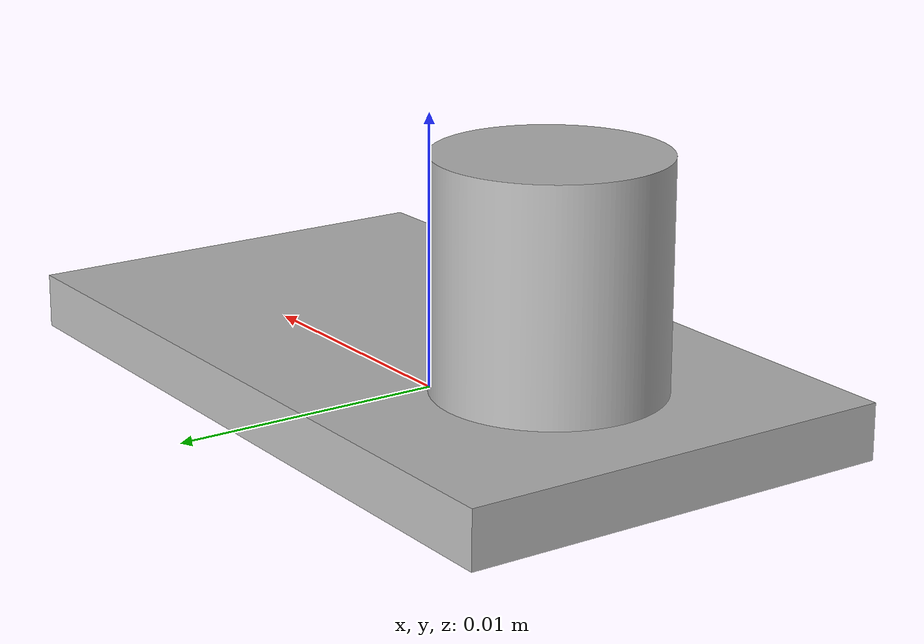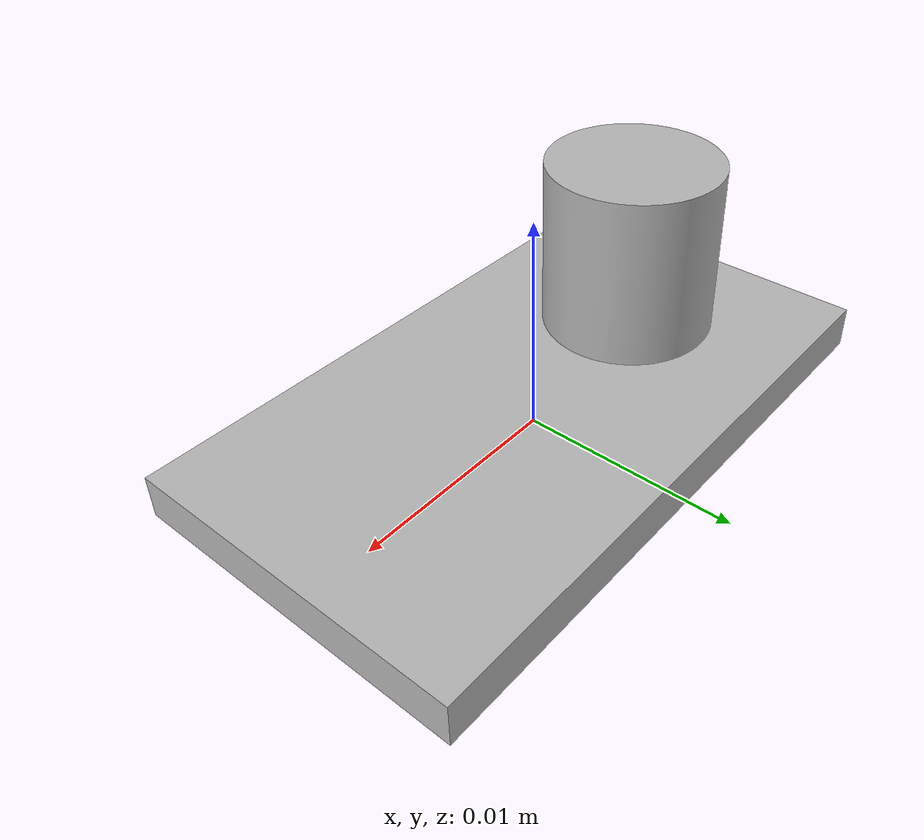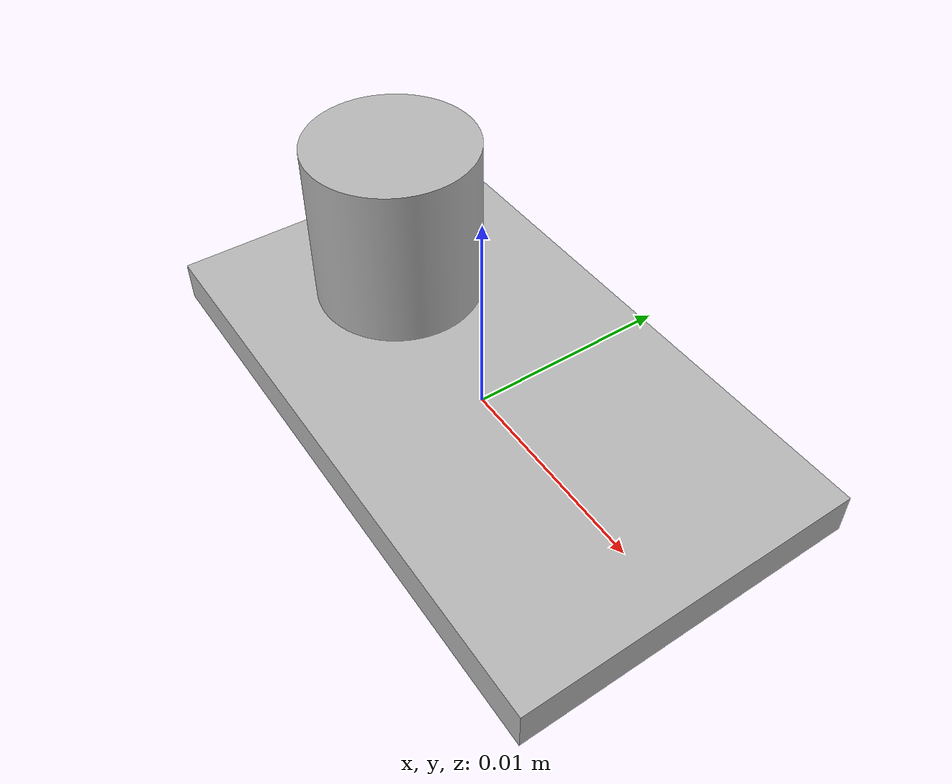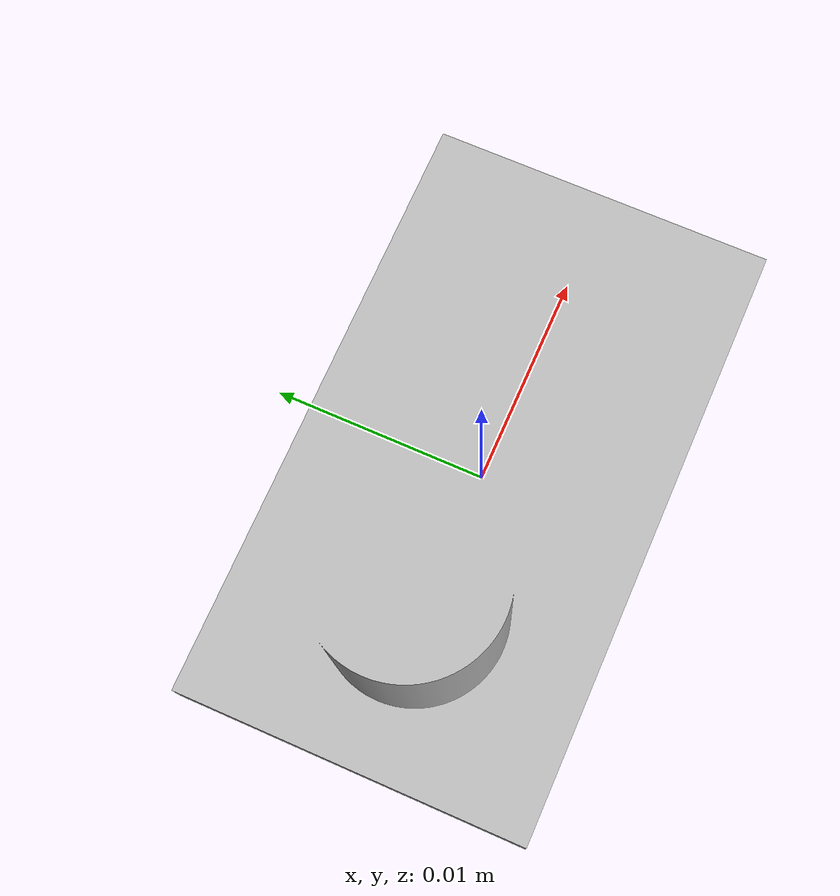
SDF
<?xml version="1.0" encoding="UTF-8"?>
<sdf version='1.9'>

  <model name='MLX90614'>

    <link name="MLX90614_link">
    <inertial>
        <pose>0.00358 -0.03 .014 0 0 0</pose>
        <mass>0.061</mass>
        <inertia>
          <ixx>0.0000460804</ixx>
          <ixy>0</ixy>
          <ixz>0</ixz>
          <iyy>0.0000055421</iyy>
          <iyz>0</iyz>
          <izz>0.0000436519</izz>
        </inertia>
      </inertial>
    <collision name="collision">
      <geometry>
        <mesh>
            <uri>model://MLX90614/meshes/MLX90614.stl</uri>
          </mesh>
      </geometry>
    </collision>
    <visual name="visual">
      <geometry>
        <mesh>
            <uri>model://MLX90614/meshes/MLX90614.stl</uri>
          </mesh>
      </geometry>
    </visual>
    <sensor name="camera_thermal" type="thermal_camera">
      <pose>0 0 0 0 1.5708 0</pose>
      <always_on>1</always_on>
      <update_rate>10</update_rate>
      <visualize>true</visualize>

      <topic>/MLX90614/thermal_image</topic>

      <thermal_camera>
        <horizontal_fov>0.611</horizontal_fov> <!-- 35° in Radiant -->
        <image>
          <width>320</width>
          <height>240</height>
          <format>L16</format>
        </image>
        <clip>
          <near>0.1</near>
          <far>20</far>
        </clip>

        <min_temp>203.15</min_temp>
        <max_temp>653.15</max_temp>
        <resolution>0.01</resolution>     <!-- 0.01 K Auflösung -->
      </thermal_camera>
    </sensor>

  </link>
</model>
</sdf>
